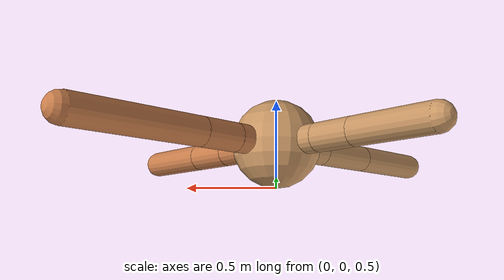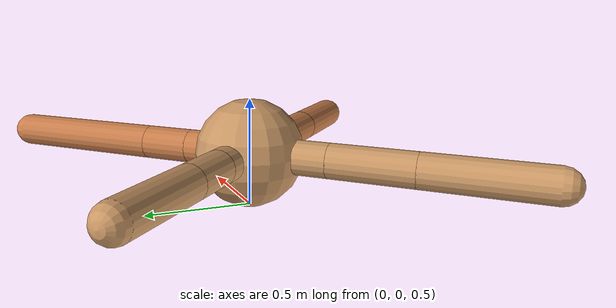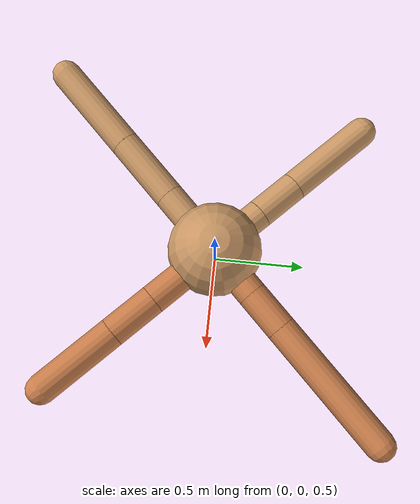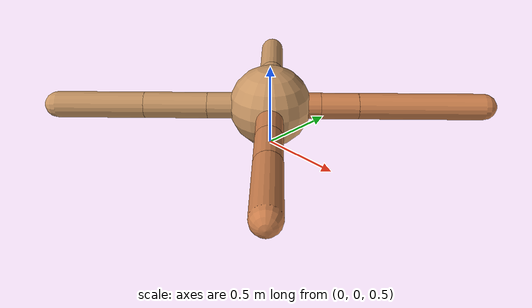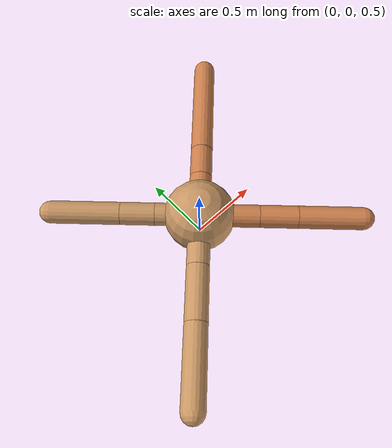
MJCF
<mujoco model="ant">
  <compiler angle="degree" coordinate="local" inertiafromgeom="true" />
  <option integrator="RK4" timestep="0.01" />
  <custom>
    <numeric data="0.0 0.0 0.55 1.0 0.0 0.0 0.0 0.0 1.0 0.0 -1.0 0.0 -1.0 0.0 1.0" name="init_qpos" />
  </custom>
  <default>
    <joint armature="1" damping="1" limited="true" />
    <geom conaffinity="0" condim="3" density="5.0" friction="1.5 0.1 0.1" margin="0.01" rgba="0.8 0.6 0.4 1" />
  </default>
  <worldbody>
    <body name="torso" pos="0 0 0.75">
      <geom name="torso_geom" pos="0 0 0" size="0.25" type="sphere" />

      <body name="front_left_leg" pos="0 0 0">
        <geom fromto="0.0 0.0 0.0 0.21830518250416142 0.21830518250416142 0.0" name="aux_1_geom" size="0.08" type="capsule" rgba=".8 .5 .3 1" />
        <body name="aux_1" pos="0.21830518250416142 0.21830518250416142 0.0">
          <joint axis="0 0 1" name="hip_1" pos="0.0 0.0 0.0" range="-40 40" type="hinge" />
          <geom fromto="0.0 0.0 0.0 0.1621940838995785 0.1621940838995785 0.0" name="left_leg_geom" size="0.08" type="capsule" rgba=".8 .5 .3 1" />
          <body pos="0.1621940838995785 0.1621940838995785 0.0" name="front_left_foot">
            <joint axis="-1 1 0" name="ankle_1" pos="0.0 0.0 0.0" range="30 100" type="hinge" />
            <geom fromto="0.0 0.0 0.0 0.5376232044738741 0.5376232044738741 0.0" name="left_ankle_geom" size="0.08" type="capsule" rgba=".8 .5 .3 1" />
          </body>
        </body>
      </body>
      <body name="front_right_leg" pos="0 0 0">
        <geom fromto="0.0 0.0 0.0 -0.22030407078942302 0.22030407078942302 0.0" name="aux_2_geom" size="0.08" type="capsule" />
        <body name="aux_2" pos="-0.22030407078942302 0.22030407078942302 0.0">
          <joint axis="0 0 1" name="hip_2" pos="0.0 0.0 0.0" range="-40 40" type="hinge" />
          <geom fromto="0.0 0.0 0.0 -0.1708114551801756 0.1708114551801756 0.0" name="right_leg_geom" size="0.08" type="capsule" />
          <body pos="-0.1708114551801756 0.1708114551801756 0.0" name="front_right_foot">
            <joint axis="1 1 0" name="ankle_2" pos="0.0 0.0 0.0" range="-100 -30" type="hinge" />
            <geom fromto="0.0 0.0 0.0 -0.3461675302298597 0.3461675302298597 0.0" name="right_ankle_geom" size="0.08" type="capsule" />
          </body>
        </body>
      </body>
      <body name="left_back_leg" pos="0 0 0">
        <geom fromto="0.0 0.0 0.0 -0.27057369144852234 -0.27057369144852234 0.0" name="aux_3_geom" size="0.08" type="capsule" />
        <body name="aux_3" pos="-0.27057369144852234 -0.27057369144852234 0.0">
          <joint axis="0 0 1" name="hip_3" pos="0.0 0.0 0.0" range="-40 40" type="hinge" />
          <geom fromto="0.0 0.0 0.0 -0.27240254148973836 -0.27240254148973836 0.0" name="back_leg_geom" size="0.08" type="capsule" />
          <body pos="-0.27240254148973836 -0.27240254148973836 0.0" name="left_back_foot">
            <joint axis="-1 1 0" name="ankle_3" pos="0.0 0.0 0.0" range="-100 -30" type="hinge" />
            <geom fromto="0.0 0.0 0.0 -0.3788670744182485 -0.3788670744182485 0.0" name="third_ankle_geom" size="0.08" type="capsule" />
          </body>
        </body>
      </body>
      <body name="right_back_leg" pos="0 0 0">
        <geom fromto="0.0 0.0 0.0 0.29558741720646786 -0.29558741720646786 0.0" name="aux_4_geom" size="0.08" type="capsule" rgba=".8 .5 .3 1" />
        <body name="aux_4" pos="0.29558741720646786 -0.29558741720646786 0.0">
          <joint axis="0 0 1" name="hip_4" pos="0.0 0.0 0.0" range="-40 40" type="hinge" />
          <geom fromto="0.0 0.0 0.0 0.1890045076534302 -0.1890045076534302 0.0" name="rightback_leg_geom" size="0.08" type="capsule" rgba=".8 .5 .3 1" />
          <body pos="0.1890045076534302 -0.1890045076534302 0.0" name="right_back_foot">
            <joint axis="1 1 0" name="ankle_4" pos="0.0 0.0 0.0" range="30 100" type="hinge" />
            <geom fromto="0.0 0.0 0.0 0.321212165527589 -0.321212165527589 0.0" name="fourth_ankle_geom" size="0.08" type="capsule" rgba=".8 .5 .3 1" />
          </body>
        </body>
      </body>
    </body>
  </worldbody>
  <actuator>
    <motor ctrllimited="true" ctrlrange="-1.0 1.0" joint="hip_4" gear="150" />
    <motor ctrllimited="true" ctrlrange="-1.0 1.0" joint="ankle_4" gear="150" />
    <motor ctrllimited="true" ctrlrange="-1.0 1.0" joint="hip_1" gear="150" />
    <motor ctrllimited="true" ctrlrange="-1.0 1.0" joint="ankle_1" gear="150" />
    <motor ctrllimited="true" ctrlrange="-1.0 1.0" joint="hip_2" gear="150" />
    <motor ctrllimited="true" ctrlrange="-1.0 1.0" joint="ankle_2" gear="150" />
    <motor ctrllimited="true" ctrlrange="-1.0 1.0" joint="hip_3" gear="150" />
    <motor ctrllimited="true" ctrlrange="-1.0 1.0" joint="ankle_3" gear="150" />
  </actuator>
</mujoco>
